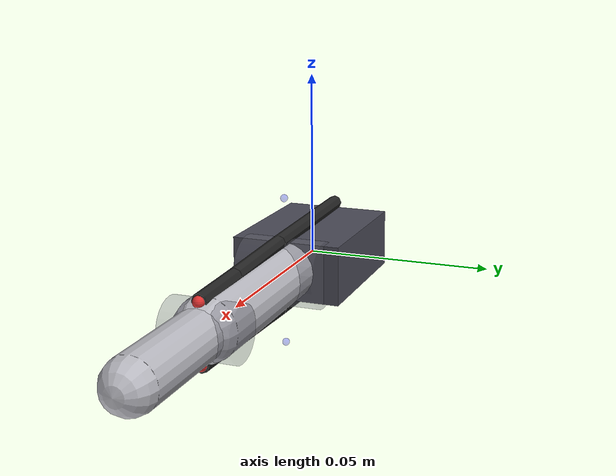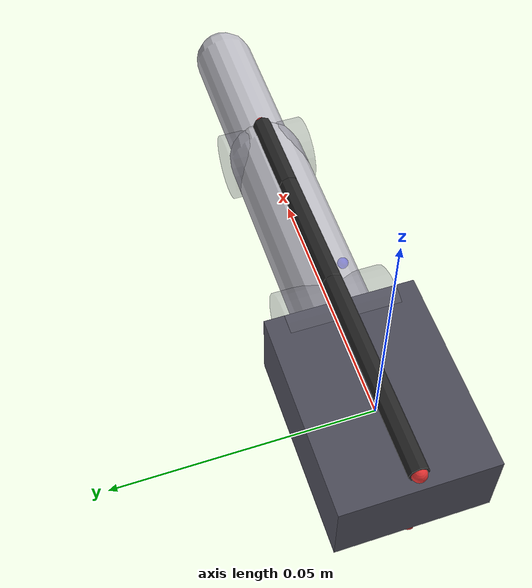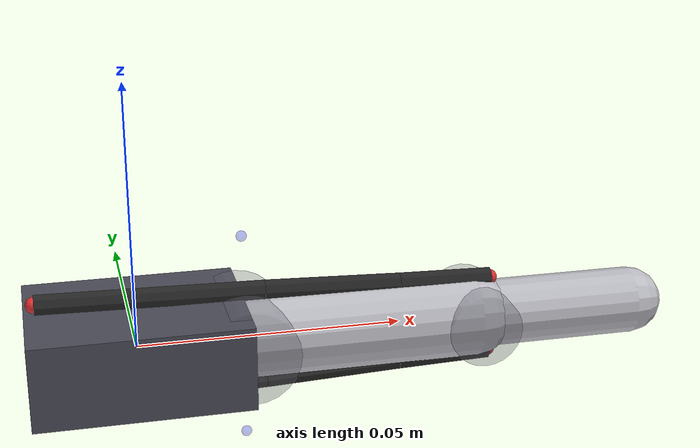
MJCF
<mujoco model="tendon_finger">
  <compiler angle="radian" autolimits="true"/>

  <!-- 1 kHz physics. Tendon friction is a stiff, discontinuous effect;
       at the MuJoCo default of 2 ms the hysteresis loop is visibly
       distorted by integration error rather than by the physics. -->
  <option timestep="0.001" integrator="implicitfast" gravity="0 0 -9.81"/>

  <default>
    <joint type="hinge" axis="0 1 0" damping="0.01" armature="0.001"/>
    <geom type="capsule" size="0.008" rgba="0.75 0.75 0.78 1" density="1200"/>
    <site size="0.0015" rgba="0.9 0.2 0.2 1"/>
    <!-- Tendon defaults. width is visual only. The three dynamics
         parameters are overridden per-experiment by the sweep script. -->
    <tendon width="0.002" rgba="0.15 0.15 0.15 1"
            stiffness="0" damping="0.001" frictionloss="0.0"/>
  </default>

  <worldbody>
    <light pos="0.2 -0.3 0.5" dir="-0.3 0.5 -1" diffuse="0.9 0.9 0.9"/>
    <camera name="side" pos="0.09 -0.42 0.06" xyaxes="1 0 0 0 0.2 1"/>

    <!-- Fixed base -->
    <body name="base" pos="0 0 0">
      <geom type="box" size="0.02 0.015 0.008" rgba="0.3 0.3 0.35 1"/>

      <geom name="pulley_prox" type="cylinder" size="0.009 0.011"
            pos="0.02 0 0" euler="1.5708 0 0" rgba="0.45 0.45 0.5 0.35"
            contype="0" conaffinity="0"/>

      <!-- Sites anchoring the tendons at the base. -->
      <site name="anchor_flex"   pos="-0.018 0 -0.010"/>
      <site name="anchor_extend" pos="-0.018 0  0.010"/>

      <!-- ---------------- proximal phalanx ---------------- -->
      <body name="proximal" pos="0.02 0 0">
        <joint name="mcp" range="-0.15 1.5"/>
        <geom fromto="0 0 0  0.045 0 0"/>
        <inertial pos="0.0225 0 0" mass="0.012" diaginertia="1e-6 3e-6 3e-6"/>

        <site name="prox_flex"   pos="0.004 0 -0.009"/>
        <site name="prox_extend" pos="0.004 0  0.009"/>
        <site name="prox_mid_flex"   pos="0.030 0 -0.008"/>
        <site name="prox_mid_extend" pos="0.030 0  0.008"/>

        <geom name="pulley_dist" type="cylinder" size="0.007 0.009"
              pos="0.045 0 0" euler="1.5708 0 0" rgba="0.45 0.45 0.5 0.35"
              contype="0" conaffinity="0"/>

        <!-- ---------------- distal phalanx ---------------- -->
        <body name="distal" pos="0.045 0 0">
          <joint name="pip" range="-0.1 1.7"/>
          <geom fromto="0 0 0  0.032 0 0" size="0.0065"/>
          <inertial pos="0.016 0 0" mass="0.007" diaginertia="5e-7 1.5e-6 1.5e-6"/>

          <site name="dist_flex"   pos="0.003 0 -0.0075"/>
          <site name="dist_extend" pos="0.003 0  0.0075"/>
          <site name="tip"         pos="0.032 0 0" size="0.003" rgba="0.2 0.7 0.3 1"/>
        </body>
      </body>
    </body>

    <!-- sidesite markers. These are NOT decorative: each tells MuJoCo which
         side of the corresponding pulley its tendon wraps. Remove them and
         the wrap direction becomes arbitrary. -->
    <site name="side_prox_flex"   pos="0.02 0 -0.02" size="0.001" rgba="0 0 1 0.3"/>
    <site name="side_prox_extend" pos="0.02 0  0.02" size="0.001" rgba="0 0 1 0.3"/>
  </worldbody>

  <tendon>
    <spatial name="flexor">
      <site site="anchor_flex"/>
      <geom geom="pulley_prox" sidesite="side_prox_flex"/>
      <site site="prox_flex"/>
      <site site="prox_mid_flex"/>
      <site site="dist_flex"/>
    </spatial>

    <!-- EXTENSOR: the antagonist, routed on the opposite side. -->
    <spatial name="extensor">
      <site site="anchor_extend"/>
      <geom geom="pulley_prox" sidesite="side_prox_extend"/>
      <site site="prox_extend"/>
      <site site="prox_mid_extend"/>
      <site site="dist_extend"/>
    </spatial>
  </tendon>

  <actuator>
    <motor name="act_flexor"   tendon="flexor"   ctrlrange="0 20" gear="-1"/>
    <motor name="act_extensor" tendon="extensor" ctrlrange="0 20" gear="-1"/>
  </actuator>

  <sensor>
    <jointpos name="mcp_pos" joint="mcp"/>
    <jointpos name="pip_pos" joint="pip"/>
    <tendonpos name="flexor_len" tendon="flexor"/>
    <tendonpos name="extensor_len" tendon="extensor"/>
    <framepos name="tip_pos" objtype="site" objname="tip"/>
  </sensor>
</mujoco>
